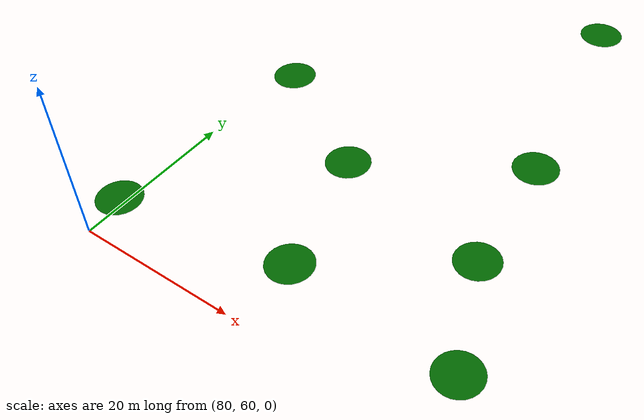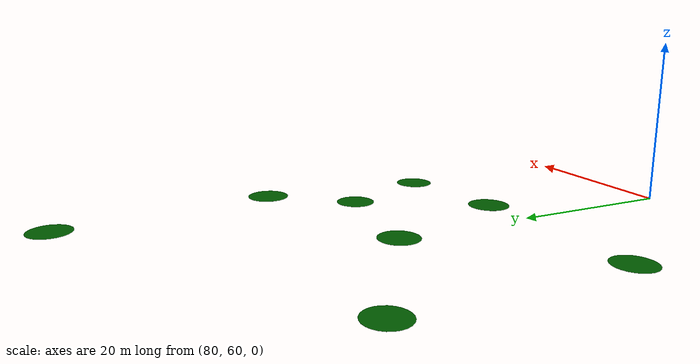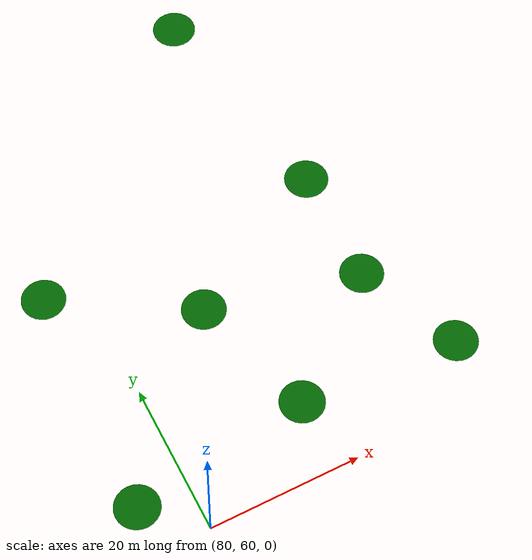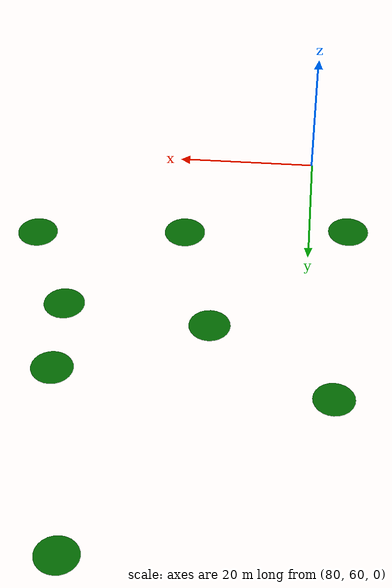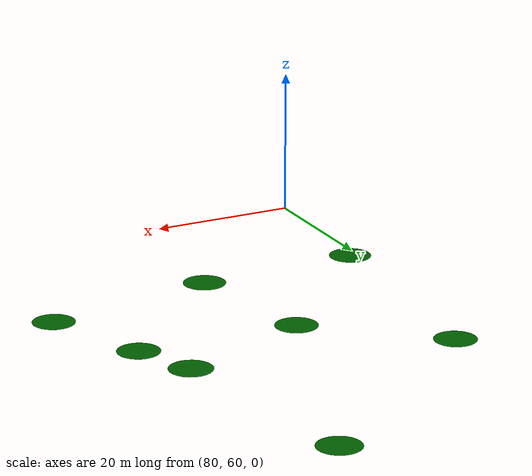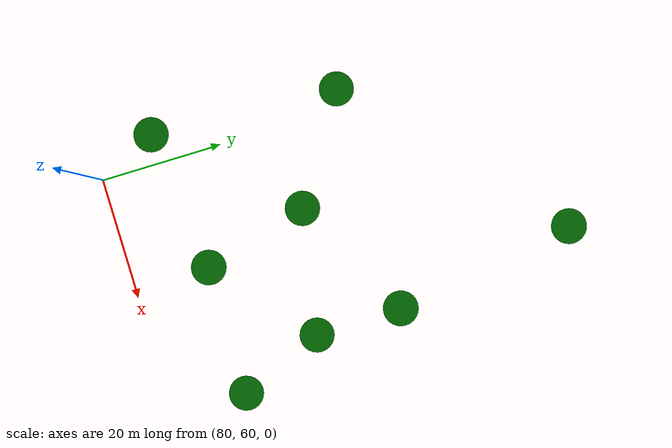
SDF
<sdf version="1.6">
 <world name="default">
  <model name="ground_plane">
   <static>1</static>
   <link name="link">
    <collision name="collision">
     <geometry><plane><normal>0 0 1</normal><size>100 100</size></plane></geometry>
     <surface><friction><ode><mu>100</mu><mu2>50</mu2></ode></friction></surface>
    </collision>
    <visual name="visual">
     <cast_shadows>0</cast_shadows>
     <geometry><plane><normal>0 0 1</normal><size>100 100</size></plane></geometry>
     <material>
      <script><uri>file://media/materials/scripts/gazebo.material</uri><name>Gazebo/Grey</name></script>
     </material>
    </visual>
   </link>
  </model>
  <model name="M16APM_point_clone_0_clone_clone">
   <link name="link">
    <inertial>
     <mass>1</mass>
     <inertia><ixx>0.145833</ixx><ixy>0</ixy><ixz>0</ixz><iyy>0.145833</iyy><iyz>0</iyz><izz>0.125</izz></inertia>
    </inertial>
    <gravity>0</gravity>
    <visual name="ModelPreview_1::link::visual_1">
     <geometry><cylinder><radius>3</radius><length>0.01</length></cylinder></geometry>
     <material>
      <script><name>Gazebo/Grey</name><uri>file://media/materials/scripts/gazebo.material</uri></script>
      <ambient>0 0.4 0 0</ambient>
      <diffuse>0 0.4 0 0</diffuse>
      <specular>0 0.41 0 0</specular>
      <emissive>0 0.4 0 0</emissive>
      <shader type="vertex"><normal_map>__default__</normal_map></shader>
     </material>
    </visual>
    <visual name="visual">
     <geometry><cylinder><radius>3</radius><length>0.005</length></cylinder></geometry>
     <material>
      <script><name>Gazebo/Grey</name><uri>file://media/materials/scripts/gazebo.material</uri></script>
      <ambient>0 0.4 0 0</ambient>
      <diffuse>0 0.4 0 0</diffuse>
      <specular>0 0.41 0 0</specular>
      <emissive>0 0.4 0 0</emissive>
      <shader type="vertex"><normal_map>__default__</normal_map></shader>
     </material>
    </visual>
   </link>
   <static>0</static>
   <pose>75.5 101 -6.5057 0 -0 0</pose>
  </model>
  <model name="M16APM_point_clone_0_clone_clone_clone_clone_clone_clone_clone">
   <link name="link">
    <inertial>
     <mass>1</mass>
     <inertia><ixx>0.145833</ixx><ixy>0</ixy><ixz>0</ixz><iyy>0.145833</iyy><iyz>0</iyz><izz>0.125</izz></inertia>
    </inertial>
    <gravity>0</gravity>
    <visual name="ModelPreview_1::link::visual_1">
     <geometry><cylinder><radius>3</radius><length>0.01</length></cylinder></geometry>
     <material>
      <script><name>Gazebo/Grey</name><uri>file://media/materials/scripts/gazebo.material</uri></script>
      <ambient>0 0.4 0 0</ambient>
      <diffuse>0 0.4 0 0</diffuse>
      <specular>0 0.41 0 0</specular>
      <emissive>0 0.4 0 0</emissive>
      <shader type="vertex"><normal_map>__default__</normal_map></shader>
     </material>
    </visual>
    <visual name="visual">
     <geometry><cylinder><radius>3</radius><length>0.005</length></cylinder></geometry>
     <material>
      <script><name>Gazebo/Grey</name><uri>file://media/materials/scripts/gazebo.material</uri></script>
      <ambient>0 0.4 0 0</ambient>
      <diffuse>0 0.4 0 0</diffuse>
      <specular>0 0.41 0 0</specular>
      <emissive>0 0.4 0 0</emissive>
      <shader type="vertex"><normal_map>__default__</normal_map></shader>
     </material>
    </visual>
   </link>
   <static>0</static>
   <pose>121 71 -6.5346 0 -0 0</pose>
  </model>
  <model name="M16APM_point_clone_0_clone_clone_clone_clone_clone_clone_clone_2">
   <link name="link">
    <inertial>
     <mass>1</mass>
     <inertia><ixx>0.145833</ixx><ixy>0</ixy><ixz>0</ixz><iyy>0.145833</iyy><iyz>0</iyz><izz>0.125</izz></inertia>
    </inertial>
    <gravity>0</gravity>
    <visual name="ModelPreview_1::link::visual_1">
     <geometry><cylinder><radius>3</radius><length>0.01</length></cylinder></geometry>
     <material>
      <script><name>Gazebo/Grey</name><uri>file://media/materials/scripts/gazebo.material</uri></script>
      <ambient>0 0.4 0 0</ambient>
      <diffuse>0 0.4 0 0</diffuse>
      <specular>0 0.41 0 0</specular>
      <emissive>0 0.4 0 0</emissive>
      <shader type="vertex"><normal_map>__default__</normal_map></shader>
     </material>
    </visual>
    <visual name="visual">
     <geometry><cylinder><radius>3</radius><length>0.005</length></cylinder></geometry>
     <material>
      <script><name>Gazebo/Grey</name><uri>file://media/materials/scripts/gazebo.material</uri></script>
      <ambient>0 0.4 0 0</ambient>
      <diffuse>0 0.4 0 0</diffuse>
      <specular>0 0.41 0 0</specular>
      <emissive>0 0.4 0 0</emissive>
      <shader type="vertex"><normal_map>__default__</normal_map></shader>
     </material>
    </visual>
   </link>
   <static>0</static>
   <pose>109.5 131.5 -3.6218 0 -0 0</pose>
  </model>
  <model name="M16APM_point_clone_0_clone_clone_clone_clone_clone_clone_clone_6">
   <link name="link">
    <inertial>
     <mass>1</mass>
     <inertia><ixx>0.145833</ixx><ixy>0</ixy><ixz>0</ixz><iyy>0.145833</iyy><iyz>0</iyz><izz>0.125</izz></inertia>
    </inertial>
    <gravity>0</gravity>
    <visual name="ModelPreview_1::link::visual_1">
     <geometry><cylinder><radius>3</radius><length>0.01</length></cylinder></geometry>
     <material>
      <script><name>Gazebo/Grey</name><uri>file://media/materials/scripts/gazebo.material</uri></script>
      <ambient>0 0.4 0 0</ambient>
      <diffuse>0 0.4 0 0</diffuse>
      <specular>0 0.41 0 0</specular>
      <emissive>0 0.4 0 0</emissive>
      <shader type="vertex"><normal_map>__default__</normal_map></shader>
     </material>
    </visual>
    <visual name="visual">
     <geometry><cylinder><radius>3</radius><length>0.005</length></cylinder></geometry>
     <material>
      <script><name>Gazebo/Grey</name><uri>file://media/materials/scripts/gazebo.material</uri></script>
      <ambient>0 0.4 0 0</ambient>
      <diffuse>0 0.4 0 0</diffuse>
      <specular>0 0.41 0 0</specular>
      <emissive>0 0.4 0 0</emissive>
      <shader type="vertex"><normal_map>__default__</normal_map></shader>
     </material>
    </visual>
   </link>
   <static>0</static>
   <pose>115 85.5 -6.6985 0 -0 0</pose>
  </model>
  <model name="M16APM_point_clone_0_clone_clone_clone_clone_clone_clone_clone_10">
   <link name="link">
    <inertial>
     <mass>1</mass>
     <inertia><ixx>0.145833</ixx><ixy>0</ixy><ixz>0</ixz><iyy>0.145833</iyy><iyz>0</iyz><izz>0.125</izz></inertia>
    </inertial>
    <gravity>0</gravity>
    <visual name="ModelPreview_1::link::visual_1">
     <geometry><cylinder><radius>3</radius><length>0.01</length></cylinder></geometry>
     <material>
      <script><name>Gazebo/Grey</name><uri>file://media/materials/scripts/gazebo.material</uri></script>
      <ambient>0 0.4 0 0</ambient>
      <diffuse>0 0.4 0 0</diffuse>
      <specular>0 0.41 0 0</specular>
      <emissive>0 0.4 0 0</emissive>
      <shader type="vertex"><normal_map>__default__</normal_map></shader>
     </material>
    </visual>
    <visual name="visual">
     <geometry><cylinder><radius>3</radius><length>0.005</length></cylinder></geometry>
     <material>
      <script><name>Gazebo/Grey</name><uri>file://media/materials/scripts/gazebo.material</uri></script>
      <ambient>0 0.4 0 0</ambient>
      <diffuse>0 0.4 0 0</diffuse>
      <specular>0 0.41 0 0</specular>
      <emissive>0 0.4 0 0</emissive>
      <shader type="vertex"><normal_map>__default__</normal_map></shader>
     </material>
    </visual>
   </link>
   <static>0</static>
   <pose>114.5 100.5 -3.8655 0 -0 0</pose>
  </model>
  <model name="M16APM_point_clone_0_clone_clone_clone_clone_clone_clone_clone_13">
   <link name="link">
    <inertial>
     <mass>1</mass>
     <inertia><ixx>0.145833</ixx><ixy>0</ixy><ixz>0</ixz><iyy>0.145833</iyy><iyz>0</iyz><izz>0.125</izz></inertia>
    </inertial>
    <gravity>0</gravity>
    <visual name="ModelPreview_1::link::visual_1">
     <geometry><cylinder><radius>3</radius><length>0.01</length></cylinder></geometry>
     <material>
      <script><name>Gazebo/Grey</name><uri>file://media/materials/scripts/gazebo.material</uri></script>
      <ambient>0 0.4 0 0</ambient>
      <diffuse>0 0.4 0 0</diffuse>
      <specular>0 0.41 0 0</specular>
      <emissive>0 0.4 0 0</emissive>
      <shader type="vertex"><normal_map>__default__</normal_map></shader>
     </material>
    </visual>
    <visual name="visual">
     <geometry><cylinder><radius>3</radius><length>0.005</length></cylinder></geometry>
     <material>
      <script><name>Gazebo/Grey</name><uri>file://media/materials/scripts/gazebo.material</uri></script>
      <ambient>0 0.4 0 0</ambient>
      <diffuse>0 0.4 0 0</diffuse>
      <specular>0 0.41 0 0</specular>
      <emissive>0 0.4 0 0</emissive>
      <shader type="vertex"><normal_map>__default__</normal_map></shader>
     </material>
    </visual>
   </link>
   <static>0</static>
   <pose>98.5 71.5 -4.4556 0 -0 0</pose>
  </model>
  <model name="M16APM_point_clone_0_clone_clone_clone_clone_clone_clone_clone_14">
   <link name="link">
    <inertial>
     <mass>1</mass>
     <inertia><ixx>0.145833</ixx><ixy>0</ixy><ixz>0</ixz><iyy>0.145833</iyy><iyz>0</iyz><izz>0.125</izz></inertia>
    </inertial>
    <gravity>0</gravity>
    <visual name="ModelPreview_1::link::visual_1">
     <geometry><cylinder><radius>3</radius><length>0.01</length></cylinder></geometry>
     <material>
      <script><name>Gazebo/Grey</name><uri>file://media/materials/scripts/gazebo.material</uri></script>
      <ambient>0 0.4 0 0</ambient>
      <diffuse>0 0.4 0 0</diffuse>
      <specular>0 0.41 0 0</specular>
      <emissive>0 0.4 0 0</emissive>
      <shader type="vertex"><normal_map>__default__</normal_map></shader>
     </material>
    </visual>
    <visual name="visual">
     <geometry><cylinder><radius>3</radius><length>0.005</length></cylinder></geometry>
     <material>
      <script><name>Gazebo/Grey</name><uri>file://media/materials/scripts/gazebo.material</uri></script>
      <ambient>0 0.4 0 0</ambient>
      <diffuse>0 0.4 0 0</diffuse>
      <specular>0 0.41 0 0</specular>
      <emissive>0 0.4 0 0</emissive>
      <shader type="vertex"><normal_map>__default__</normal_map></shader>
     </material>
    </visual>
   </link>
   <static>0</static>
   <pose>93.5 89.5 -5.3812 0 -0 0</pose>
  </model>
  <model name="M16APM_point_clone_0_clone_clone_clone_clone_clone_clone_clone_15">
   <link name="link">
    <inertial>
     <mass>1</mass>
     <inertia><ixx>0.145833</ixx><ixy>0</ixy><ixz>0</ixz><iyy>0.145833</iyy><iyz>0</iyz><izz>0.125</izz></inertia>
    </inertial>
    <gravity>0</gravity>
    <visual name="ModelPreview_1::link::visual_1">
     <geometry><cylinder><radius>3</radius><length>0.01</length></cylinder></geometry>
     <material>
      <script><name>Gazebo/Grey</name><uri>file://media/materials/scripts/gazebo.material</uri></script>
      <ambient>0 0.4 0 0</ambient>
      <diffuse>0 0.4 0 0</diffuse>
      <specular>0 0.41 0 0</specular>
      <emissive>0 0.4 0 0</emissive>
      <shader type="vertex"><normal_map>__default__</normal_map></shader>
     </material>
    </visual>
    <visual name="visual">
     <geometry><cylinder><radius>3</radius><length>0.005</length></cylinder></geometry>
     <material>
      <script><name>Gazebo/Grey</name><uri>file://media/materials/scripts/gazebo.material</uri></script>
      <ambient>0 0.4 0 0</ambient>
      <diffuse>0 0.4 0 0</diffuse>
      <specular>0 0.41 0 0</specular>
      <emissive>0 0.4 0 0</emissive>
      <shader type="vertex"><normal_map>__default__</normal_map></shader>
     </material>
    </visual>
   </link>
   <static>0</static>
   <pose>74 68.5 -5.4048 0 -0 0</pose>
  </model>
 </world>
</sdf>
